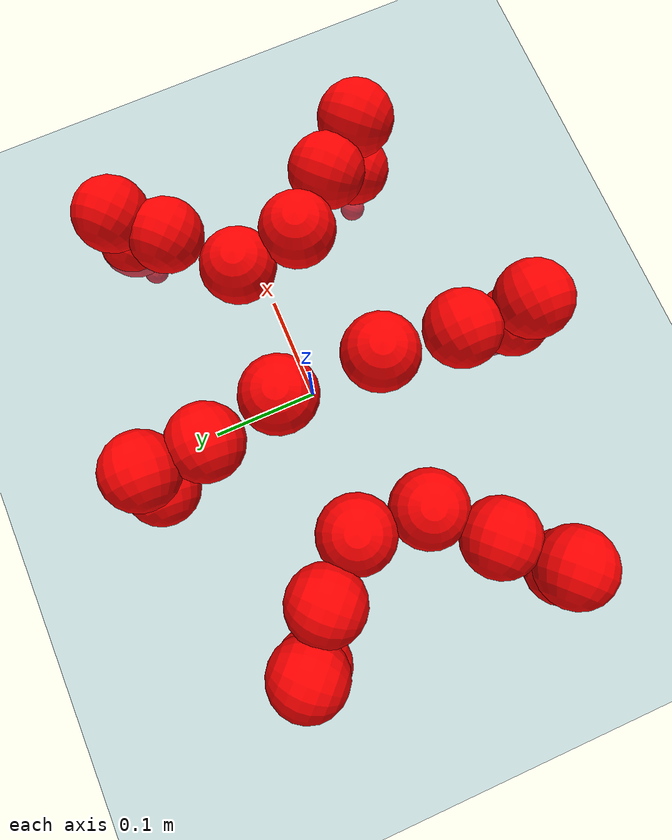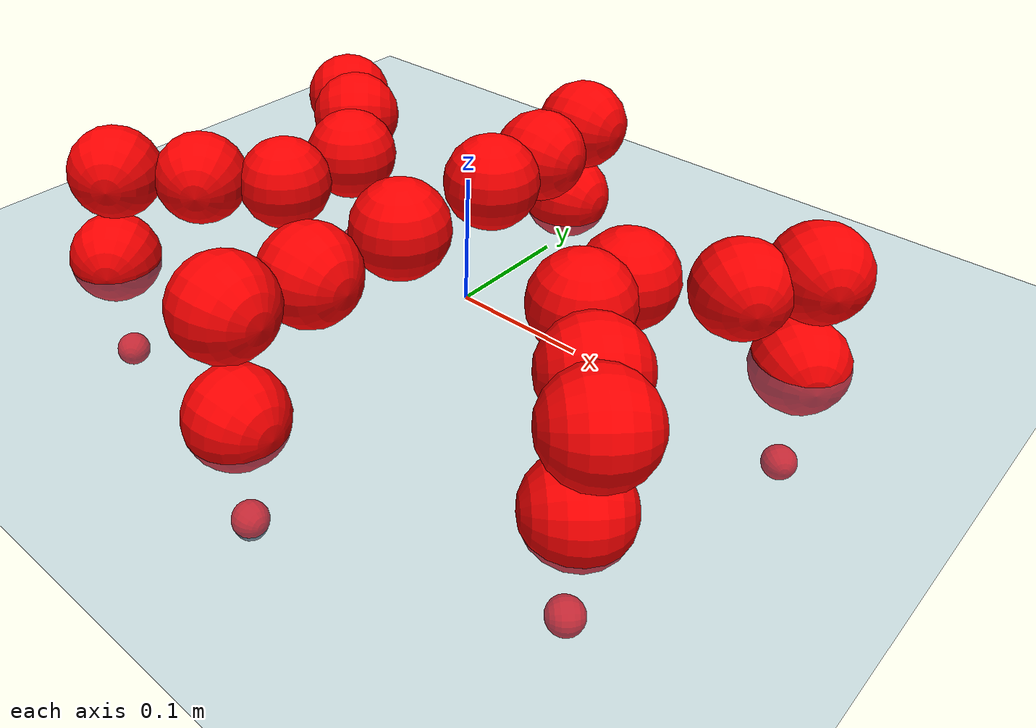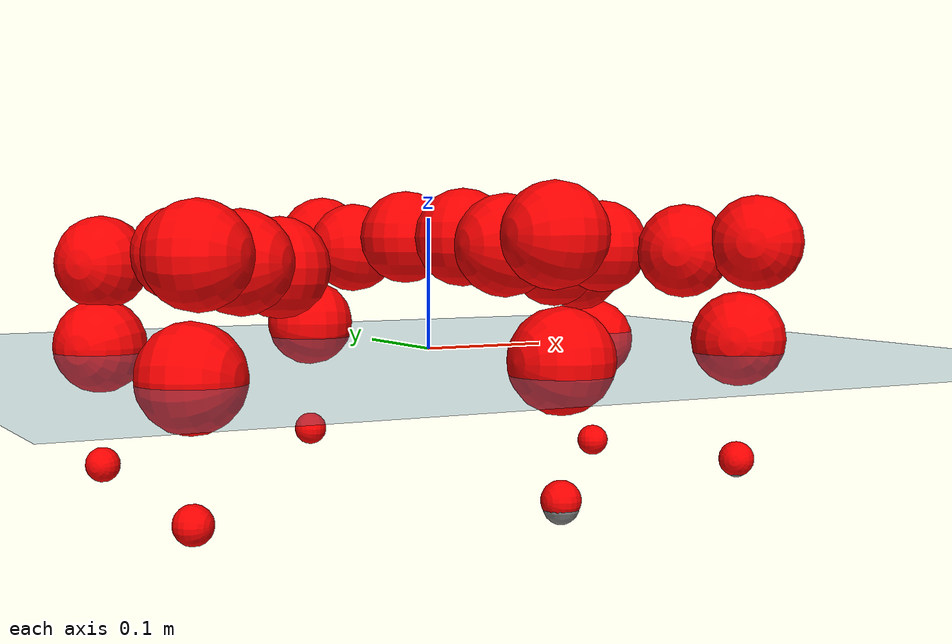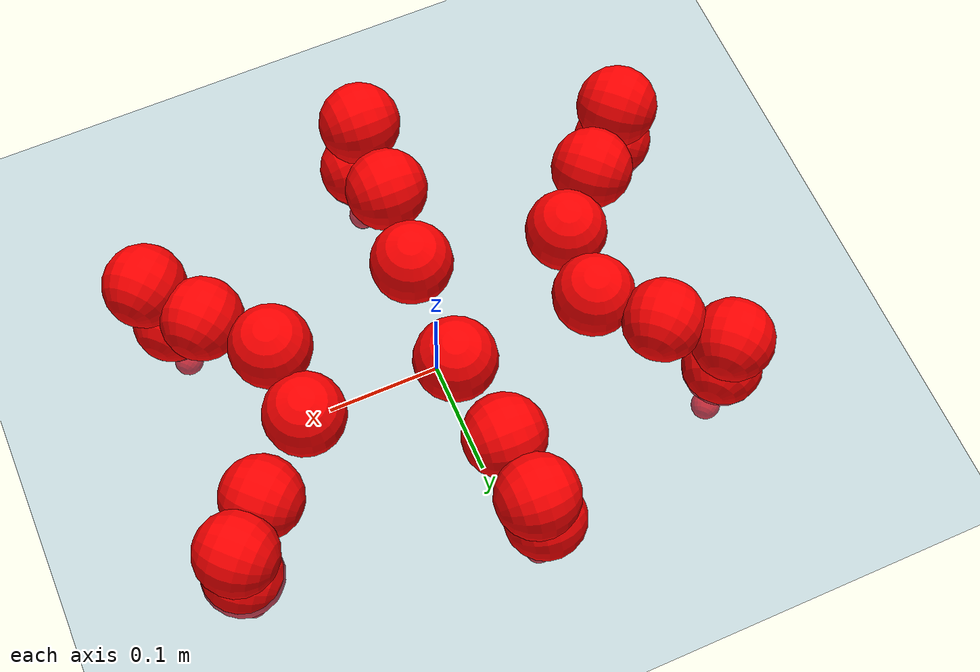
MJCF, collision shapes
<mujoco model="Golem">
  <compiler angle="radian" assetdir="assets" balanceinertia="true" inertiafromgeom="false"/>

  <option timestep="0.005" density="1.2" viscosity="2e-05"/>

  <size nkey="1"/>

  <visual>
    <quality shadowsize="8192"/>
    <map shadowclip="0.5"/>
  </visual>

  <default>
    <default class="/">
      <joint armature="0.01" damping="0.01" frictionloss="0.01"/>
      <geom contype="0" conaffinity="0" group="1" solref="-1000 -80"/>
      <site size="0.01 0.005 0.005" group="5"/>
      <general forcelimited="true" biastype="affine" gainprm="25" biasprm="0 -25 -0.5"/>
      <default class="visual">
        <geom type="mesh" group="2"/>
      </default>
      <default class="collision">
        <geom group="3"/>
      </default>
      <default class="foot">
        <geom size="0.01 0 0" condim="6" group="4" priority="1" solimp="0.015 1 0.01"/>
      </default>
      <default class="reward_collision_sphere">
        <geom group="5" rgba="1 0 0 1"/>
      </default>
    </default>
  </default>

  <asset>
    <texture type="skybox" colorspace="auto" name="//unnamed_texture_0" builtin="gradient" rgb1="0.95 0.95 0.95" rgb2="0.95 0.95 0.95" width="100" height="600"/>
    <texture type="2d" colorspace="auto" name="texplane" builtin="checker" rgb1="0.345 0.575 0.748" rgb2="0.345 0.575 0.748" markrgb="1 1 1" width="512" height="512"/>
    <material name="MatPlane" class="/" texture="texplane" texuniform="true" texrepeat="2 2" specular="0.9"/>
    <mesh name="body" class="/" file="body.stl" scale="0.001 0.001 0.001"/>
    <mesh name="coxa" class="/" file="coxa.stl" scale="0.001 0.001 0.001"/>
    <mesh name="femur" class="/" file="femur.stl" scale="0.001 0.001 0.001"/>
    <mesh name="tibia" class="/" file="tibia.stl" scale="0.001 0.001 0.001"/>
    <mesh name="tarsus" class="/" file="tarsus.stl" scale="0.001 0.001 0.001"/>
  </asset>

  <worldbody>
    <geom name="floor" class="/" size="100 100 0.125" type="plane" group="0" material="MatPlane"/>
    <light name="toplight_shadow" class="/" pos="0 0 5" dir="0.0990148 0.0990148 -0.990148" type="directional" ambient="0.04 0.04 0.04" diffuse="0.55 0.55 0.55" specular="0.12 0.12 0.12"/>
    <light name="toplight_fill" class="/" pos="0 0 5" dir="0.0990148 0.0990148 -0.990148" type="directional" castshadow="false" ambient="0.04 0.04 0.04" diffuse="0.3 0.3 0.3" specular="0.08 0.08 0.08"/>
    <body name="trunk" pos="-0.00487064 -0.011447 -0.00734249" quat="1 -6.33767e-05 -0.000414599 -0.000324216">
      <inertial pos="0.00579334 0.00150356 0.0129734" quat="1 0.000517363 0.000599382 -0.000470349" mass="2.01466" diaginertia="0.00422846 0.000428963 0.0351891"/>
      <joint name="//unnamed_joint_0" type="free"/>
      <geom name="//unnamed_geom_1" class="/" pos="0 0 0.0821236" quat="1 0 0 0" type="mesh" rgba="0.9 0.9 0.9 1" mesh="body"/>
      <site name="imu" class="/" pos="0.114517 0.0398655 0.131746" size="0.00893368"/>
      <camera name="track" class="/" pos="0 -1.09336 0" quat="0.707107 0.707107 0 0" mode="trackcom"/>
      <camera name="ego_camera" class="/" pos="0.110531 0 0.128318" quat="-0.5 -0.5 0.5 0.5"/>
      <body name="coxa_RR" pos="-0.155974 -0.0559648 0.0740268" quat="0.380794 -0.00494951 -0.000234211 -0.924647">
        <inertial pos="-0.000338389 0.0127677 -0.0123002" quat="0.999474 -0.00584108 -0.00335392 0.0317183" mass="0.123181" diaginertia="0.00430836 0.00050994 0.0348428"/>
        <joint name="coxa_joint_RR" class="/" pos="0 0 0" axis="-0.000939158 -0.000799955 -0.999999" range="-3.32483 3.15883" armature="0.00821747" damping="0.017462" frictionloss="0.00954341"/>
        <geom name="//unnamed_geom_2" class="/" type="mesh" rgba="0.2 0.2 0.2 1" mesh="coxa"/>
        <geom name="//unnamed_geom_3" class="reward_collision_sphere" size="0.0357347" pos="-0.0255073 0 0"/>
        <body name="femur_RR" pos="0.0379104 -0.000276595 0.00475735" quat="0.4983 -0.499445 0.497664 0.504561">
          <inertial pos="0.00938282 -0.00229509 0.00279786" quat="1 -0.000502928 -5.48836e-06 -0.000791734" mass="0.137302" diaginertia="0.00426517 0.000462571 0.0331259"/>
          <joint name="femur_joint_RR" class="/" pos="0 0 0" axis="6.72476e-05 0.00446502 -0.99999" range="-2.97747 2.99743" armature="0.0132208" damping="0.0236054" frictionloss="0.00867277"/>
          <geom name="//unnamed_geom_4" class="/" type="mesh" rgba="0.9 0.9 0.9 1" mesh="femur"/>
          <geom name="//unnamed_geom_5" class="reward_collision_sphere" size="0.0357347"/>
          <body name="tibia_RR" pos="-0.00603105 -0.0639735 -0.000282601" quat="-5.50101e-05 1 2.25681e-05 -4.24069e-05">
            <inertial pos="-0.00646041 0.00013698 -0.00265313" quat="0.999417 0.0293061 0.00667881 -0.0162178" mass="0.146325" diaginertia="0.00402344 0.000394505 0.0266348"/>
            <joint name="tibia_joint_RR" class="/" pos="0 0 0" axis="0.043413 -0.00888418 0.999018" stiffness="0.0276855" range="-3.01927 3.41904" armature="0.00989419" damping="0" frictionloss="0.00825582"/>
            <geom name="//unnamed_geom_6" class="/" type="mesh" rgba="0.2 0.2 0.2 1" mesh="tibia"/>
            <geom name="//unnamed_geom_7" class="reward_collision_sphere" size="0.0357347"/>
            <body name="tarsus_RR" pos="0.0755786 0.0114533 -0.000109158" quat="1 0.000179197 0.000165627 0.000262318">
              <inertial pos="0.0414863 -0.013908 0.0103483" quat="0.481667 0.522658 0.502716 0.492038" mass="0.123666" diaginertia="0.00413557 0.000363453 0.0300031"/>
              <joint name="tarsus_joint_RR" class="/" pos="0 0 0" axis="-0.0221512 0.0258558 0.99942" stiffness="0.00726127" range="-3.39119 3.16491" armature="0.00700788" damping="0.042142" frictionloss="0.00604005"/>
              <geom name="//unnamed_geom_8" class="/" type="mesh" rgba="0.9 0.9 0.9 1" mesh="tarsus"/>
              <geom name="foot_1" class="foot" size="0.0072032" pos="0.0952271 0 0" quat="0 -0.707107 0 0.707107"/>
              <geom name="//unnamed_geom_10" class="reward_collision_sphere" size="0.0357347"/>
              <geom name="//unnamed_geom_11" class="reward_collision_sphere" size="0.0134005" pos="0.091401 0 0"/>
              <site name="foot_1" class="foot" pos="0.0952271 0 0" quat="0 -0.707107 0 0.707107" size="0.00893368"/>
            </body>
          </body>
        </body>
      </body>
      <body name="coxa_RM" pos="0.000280007 -0.0781863 0.0940014" quat="0.706962 -0.000389237 7.7256e-06 -0.707252">
        <inertial pos="0.00122045 -0.00588678 -0.00377646" quat="0.999992 -0.00289406 0.00198059 0.00167633" mass="0.150736" diaginertia="0.0042554 0.000465303 0.0334875"/>
        <joint name="coxa_joint_RM" class="/" pos="0 0 0" axis="-0.0225126 -0.0138771 -0.99965" stiffness="0.0596238" range="-3.0897 3.20813" armature="0.00790854" damping="0.0311857" frictionloss="0.0149844"/>
        <geom name="//unnamed_geom_12" class="/" type="mesh" rgba="0.2 0.2 0.2 1" mesh="coxa"/>
        <geom name="//unnamed_geom_13" class="reward_collision_sphere" size="0.0357347" pos="-0.0255073 0 0"/>
        <body name="femur_RM" pos="0.0494991 -0.00777039 -0.00451186" quat="0.499978 -0.500197 0.499284 0.500541">
          <inertial pos="-0.00173722 0.00678946 -0.00937497" quat="0.999898 -0.00310557 -0.00274448 -0.0136649" mass="0.144015" diaginertia="0.00512492 0.000517675 0.0344241"/>
          <joint name="femur_joint_RM" class="/" pos="0 0 0" axis="0.00517224 -0.0131247 -0.9999" range="-3.1996 3.26912" armature="0.00929053" damping="0.0514042" frictionloss="0.00864462"/>
          <geom name="//unnamed_geom_14" class="/" type="mesh" rgba="0.9 0.9 0.9 1" mesh="femur"/>
          <geom name="//unnamed_geom_15" class="reward_collision_sphere" size="0.0357347"/>
          <body name="tibia_RM" pos="-0.00777296 -0.0659009 -0.00199237" quat="-0.000242141 1 -9.006e-05 0.000505795">
            <inertial pos="0.0127752 0.0117713 -0.004331" quat="0.997895 0.0272535 0.00253701 -0.0587927" mass="0.142439" diaginertia="0.00432994 0.000480822 0.03961"/>
            <joint name="tibia_joint_RM" class="/" pos="0 0 0" axis="-0.00365243 0.00238175 0.99999" range="-3.13283 3.01846" armature="0.0057464" damping="0" frictionloss="0.00573238"/>
            <geom name="//unnamed_geom_16" class="/" type="mesh" rgba="0.2 0.2 0.2 1" mesh="tibia"/>
            <geom name="//unnamed_geom_17" class="reward_collision_sphere" size="0.0357347"/>
            <body name="tarsus_RM" pos="0.0815437 0.00348079 -0.00311189" quat="0.999999 0.000173815 -0.000158296 0.00149802">
              <inertial pos="0.0513602 0.000192231 0.00212272" quat="0.500794 0.500983 0.500487 0.49773" mass="0.128883" diaginertia="0.00374191 0.000448789 0.0308096"/>
              <joint name="tarsus_joint_RM" class="/" pos="0 0 0" axis="-0.0086879 0.01174 0.999893" stiffness="0.0276702" range="-3.12801 3.1221" armature="0.0146491" damping="0" frictionloss="0.00857959"/>
              <geom name="//unnamed_geom_18" class="/" type="mesh" rgba="0.9 0.9 0.9 1" mesh="tarsus"/>
              <geom name="foot_2" class="foot" size="0.0121737" pos="0.0952271 0 0" quat="0 -0.707107 0 0.707107"/>
              <geom name="//unnamed_geom_20" class="reward_collision_sphere" size="0.0357347"/>
              <geom name="//unnamed_geom_21" class="reward_collision_sphere" size="0.0134005" pos="0.091401 0 0"/>
              <site name="foot_2" class="foot" pos="0.0952271 0 0" quat="0 -0.707107 0 0.707107" size="0.00893368"/>
            </body>
          </body>
        </body>
      </body>
      <body name="coxa_RF" pos="0.153937 -0.0491852 0.0855651" quat="0.923759 -0.000215004 0.000214839 -0.382973">
        <inertial pos="-0.0105682 0.000406909 -0.000775452" quat="0.999984 -0.00131205 -0.00247476 -0.0048995" mass="0.142809" diaginertia="0.0038225 0.000482304 0.0403404"/>
        <joint name="coxa_joint_RF" class="/" pos="0 0 0" axis="-0.00158235 0.00916904 -0.999957" stiffness="0.0199276" range="-2.98789 3.15721" armature="0.0119692" damping="0.0169121" frictionloss="0.00909718"/>
        <geom name="//unnamed_geom_22" class="/" type="mesh" rgba="0.2 0.2 0.2 1" mesh="coxa"/>
        <geom name="//unnamed_geom_23" class="reward_collision_sphere" size="0.0357347" pos="-0.0255073 0 0"/>
        <body name="femur_RF" pos="0.0384674 -0.00263645 -0.00305693" quat="0.499922 -0.499845 0.500136 0.500097">
          <inertial pos="-0.000725871 0.00186964 0.00972427" quat="0.999848 -0.00596668 -0.0156091 0.00500343" mass="0.159953" diaginertia="0.00481147 0.000410998 0.0342182"/>
          <joint name="femur_joint_RF" class="/" pos="0 0 0" axis="-0.000831115 -0.000185614 -1" stiffness="0.0398068" range="-3.35475 3.10573" armature="0.00537424" damping="0.0475047" frictionloss="0.00688174"/>
          <geom name="//unnamed_geom_24" class="/" type="mesh" rgba="0.9 0.9 0.9 1" mesh="femur"/>
          <geom name="//unnamed_geom_25" class="reward_collision_sphere" size="0.0357347"/>
          <body name="tibia_RF" pos="-0.00672365 -0.0555013 -0.00689359" quat="1.7608e-05 1 -2.23656e-05 -5.72929e-05">
            <inertial pos="-0.00450087 -0.00792975 0.00106347" quat="0.999843 0.00276396 0.00921258 -0.0149108" mass="0.147621" diaginertia="0.00375147 0.000541832 0.0311439"/>
            <joint name="tibia_joint_RF" class="/" pos="0 0 0" axis="-0.00101684 -0.00901593 0.999959" stiffness="0.00108675" range="-3.15108 3.18757" armature="0.00680334" damping="0.0180858" frictionloss="0.013343"/>
            <geom name="//unnamed_geom_26" class="/" type="mesh" rgba="0.2 0.2 0.2 1" mesh="tibia"/>
            <geom name="//unnamed_geom_27" class="reward_collision_sphere" size="0.0357347"/>
            <body name="tarsus_RF" pos="0.0726022 -0.011752 0.00432739" quat="0.999981 -0.00366222 -0.00475604 0.00106735">
              <inertial pos="0.053413 0.012516 0.00262564" quat="0.499271 0.543956 0.503771 0.448392" mass="0.159572" diaginertia="0.00377993 0.000568115 0.0351948"/>
              <joint name="tarsus_joint_RF" class="/" pos="0 0 0" axis="0.0172417 0.0427579 0.998937" stiffness="0.0495495" range="-3.38505 3.15264" armature="0.00312663" damping="0" frictionloss="0.0086686"/>
              <geom name="//unnamed_geom_28" class="/" type="mesh" rgba="0.9 0.9 0.9 1" mesh="tarsus"/>
              <geom name="foot_3" class="foot" size="0.0100516" pos="0.0952271 0 0" quat="0 -0.707107 0 0.707107"/>
              <geom name="//unnamed_geom_30" class="reward_collision_sphere" size="0.0357347"/>
              <geom name="//unnamed_geom_31" class="reward_collision_sphere" size="0.0134005" pos="0.091401 0 0"/>
              <site name="foot_3" class="foot" pos="0.0952271 0 0" quat="0 -0.707107 0 0.707107" size="0.00893368"/>
            </body>
          </body>
        </body>
      </body>
      <body name="coxa_LR" pos="-0.150886 0.0455839 0.0759946" quat="0.381678 0.00234686 0.000144529 0.924292">
        <inertial pos="0.00365679 0.012968 -0.00340486" quat="0.998806 0.0296198 0.0374491 -0.0103766" mass="0.163665" diaginertia="0.00505427 0.000480509 0.0407882"/>
        <joint name="coxa_joint_LR" class="/" pos="0 0 0" axis="-0.0206761 0.0214127 -0.999557" stiffness="0.0423711" range="-3.0243 2.89094" armature="0.0141357" damping="0" frictionloss="0.00959401"/>
        <geom name="//unnamed_geom_32" class="/" type="mesh" rgba="0.2 0.2 0.2 1" mesh="coxa"/>
        <geom name="//unnamed_geom_33" class="reward_collision_sphere" size="0.0357347" pos="-0.0255073 0 0"/>
        <body name="femur_LR" pos="0.036833 -0.00296709 0.00527002" quat="0.499166 -0.502797 0.501141 0.496876">
          <inertial pos="-0.00373576 0.00138552 -0.00232307" quat="0.998105 2.30066e-05 -0.0560296 0.0254401" mass="0.158603" diaginertia="0.00454106 0.000499891 0.0293606"/>
          <joint name="femur_joint_LR" class="/" pos="0 0 0" axis="-0.0276938 0.0151136 0.999502" stiffness="0.05089" range="-3.40871 3.33496" armature="0.00608128" damping="0.0368858" frictionloss="0.00930873"/>
          <geom name="//unnamed_geom_34" class="/" type="mesh" rgba="0.9 0.9 0.9 1" mesh="femur"/>
          <geom name="//unnamed_geom_35" class="reward_collision_sphere" size="0.0357347"/>
          <body name="tibia_LR" pos="0.00777819 -0.0593992 0.00796123" quat="0.000795038 0.999994 -0.00222938 -0.00233818">
            <inertial pos="0.000463021 0.0121852 -0.00803792" quat="0.999337 -0.0207775 0.0297242 -0.00320951" mass="0.143814" diaginertia="0.00403727 0.000458778 0.0357725"/>
            <joint name="tibia_joint_LR" class="/" pos="0 0 0" axis="-0.00279654 -0.000732214 -0.999996" stiffness="0.00657199" range="-2.94219 2.99948" armature="0.0117749" damping="0.077151" frictionloss="0.00553159"/>
            <geom name="//unnamed_geom_36" class="/" type="mesh" rgba="0.2 0.2 0.2 1" mesh="tibia"/>
            <geom name="//unnamed_geom_37" class="reward_collision_sphere" size="0.0357347"/>
            <body name="tarsus_LR" pos="0.0625485 -0.000235171 -0.0038513" quat="0.999986 0.000388801 -0.00490465 -0.00217653">
              <inertial pos="0.0480059 0.00142441 -0.000617895" quat="0.49698 0.532783 0.483432 0.485229" mass="0.133965" diaginertia="0.00396815 0.000443355 0.0308104"/>
              <joint name="tarsus_joint_LR" class="/" pos="0 0 0" axis="9.98284e-05 5.2751e-05 -1" stiffness="0.0525672" range="-2.92076 3.16387" armature="0.00913078" damping="0.0343257" frictionloss="0.0140096"/>
              <geom name="//unnamed_geom_38" class="/" type="mesh" rgba="0.9 0.9 0.9 1" mesh="tarsus"/>
              <geom name="foot_4" class="foot" size="0.00909389" pos="0.0952271 0 0" quat="0.707107 0 -0.707107 0"/>
              <geom name="//unnamed_geom_40" class="reward_collision_sphere" size="0.0357347"/>
              <geom name="//unnamed_geom_41" class="reward_collision_sphere" size="0.0134005" pos="0.091401 0 0"/>
              <site name="foot_4" class="foot" pos="0.0952271 0 0" quat="0.707107 0 -0.707107 0" size="0.00893368"/>
            </body>
          </body>
        </body>
      </body>
      <body name="coxa_LM" pos="0.00114835 0.067676 0.0928728" quat="0.709143 0.0011255 -0.00132791 0.705062">
        <inertial pos="0.0106292 0.00363404 0.00940342" quat="0.999975 0.00411576 0.0046755 -0.0033911" mass="0.140369" diaginertia="0.00499229 0.000561214 0.029521"/>
        <joint name="coxa_joint_LM" class="/" pos="0 0 0" axis="0.00186604 0.00691331 -0.999974" range="-3.13476 3.13564" armature="0.00388296" damping="0.0687158" frictionloss="0.0124656"/>
        <geom name="//unnamed_geom_42" class="/" type="mesh" rgba="0.2 0.2 0.2 1" mesh="coxa"/>
        <geom name="//unnamed_geom_43" class="reward_collision_sphere" size="0.0357347" pos="-0.0255073 0 0"/>
        <body name="femur_LM" pos="0.0477993 0.0118667 -0.00965414" quat="0.49987 -0.500047 0.500167 0.499916">
          <inertial pos="-0.00959892 -0.00626064 -0.0114363" quat="0.999982 -0.00107825 0.00452878 0.00379004" mass="0.143595" diaginertia="0.00413453 0.000481192 0.037036"/>
          <joint name="femur_joint_LM" class="/" pos="0 0 0" axis="-0.0191156 0.00595862 0.9998" range="-3.15747 3.32887" armature="0.00612423" damping="0.0217257" frictionloss="0.00525203"/>
          <geom name="//unnamed_geom_44" class="/" type="mesh" rgba="0.9 0.9 0.9 1" mesh="femur"/>
          <geom name="//unnamed_geom_45" class="reward_collision_sphere" size="0.0357347"/>
          <body name="tibia_LM" pos="-0.0053297 -0.0583887 0.00254562" quat="0.000156902 1 4.91328e-05 0.000118047">
            <inertial pos="0.007265 0.0127098 -0.0134931" quat="0.997685 0.0413353 -0.0425258 -0.0332882" mass="0.148997" diaginertia="0.00426686 0.000501702 0.0393772"/>
            <joint name="tibia_joint_LM" class="/" pos="0 0 0" axis="-0.0210786 0.0413919 -0.998921" stiffness="0.0658037" range="-3.15561 3.36722" armature="0.00673668" damping="0.000838116" frictionloss="0.00829762"/>
            <geom name="//unnamed_geom_46" class="/" type="mesh" rgba="0.2 0.2 0.2 1" mesh="tibia"/>
            <geom name="//unnamed_geom_47" class="reward_collision_sphere" size="0.0357347"/>
            <body name="tarsus_LM" pos="0.0702995 0.00112665 -0.0112386" quat="0.999998 0.000963827 0.00176247 -0.000917839">
              <inertial pos="0.0568758 0.00332899 0.0104068" quat="0.477273 0.459134 0.530661 0.528966" mass="0.13272" diaginertia="0.00479022 0.000585952 0.0410791"/>
              <joint name="tarsus_joint_LM" class="/" pos="0 0 0" axis="0.0501757 0.0205456 -0.998529" stiffness="0.036468" range="-3.15225 3.36131" armature="0.011571" damping="0" frictionloss="0.00897346"/>
              <geom name="//unnamed_geom_48" class="/" type="mesh" rgba="0.9 0.9 0.9 1" mesh="tarsus"/>
              <geom name="foot_5" class="foot" size="0.00884862" pos="0.0952271 0 0" quat="0.707107 0 -0.707107 0"/>
              <geom name="//unnamed_geom_50" class="reward_collision_sphere" size="0.0357347"/>
              <geom name="//unnamed_geom_51" class="reward_collision_sphere" size="0.0134005" pos="0.091401 0 0"/>
              <site name="foot_5" class="foot" pos="0.0952271 0 0" quat="0.707107 0 -0.707107 0" size="0.00893368"/>
            </body>
          </body>
        </body>
      </body>
      <body name="coxa_LF" pos="0.148681 0.0483865 0.0718933" quat="0.923864 -0.00226186 -0.00545924 0.382675">
        <inertial pos="-0.00330192 0.00273792 -0.00469917" quat="0.9977 0.0268717 0.0274422 0.0558523" mass="0.118007" diaginertia="0.00467811 0.000407439 0.0397237"/>
        <joint name="coxa_joint_LF" class="/" pos="0 0 0" axis="-0.00431131 -0.0190218 -0.99981" stiffness="0.0392922" range="-3.12979 3.13564" armature="0.0095269" damping="0.0390661" frictionloss="0.00810755"/>
        <geom name="//unnamed_geom_52" class="/" type="mesh" rgba="0.2 0.2 0.2 1" mesh="coxa"/>
        <geom name="//unnamed_geom_53" class="reward_collision_sphere" size="0.0357347" pos="-0.0255073 0 0"/>
        <body name="femur_LF" pos="0.050635 -0.00459441 -0.00812198" quat="0.499793 -0.499003 0.500674 0.500528">
          <inertial pos="-0.0110122 0.00391458 -0.012383" quat="0.999767 0.00199572 -0.000166448 -0.0214832" mass="0.166898" diaginertia="0.00500672 0.00048185 0.037632"/>
          <joint name="femur_joint_LF" class="/" pos="0 0 0" axis="0.0335746 0.0168442 0.999294" stiffness="9.19856e-05" range="-3.16828 2.8637" armature="0.00469586" damping="0.0417722" frictionloss="0.00914841"/>
          <geom name="//unnamed_geom_54" class="/" type="mesh" rgba="0.9 0.9 0.9 1" mesh="femur"/>
          <geom name="//unnamed_geom_55" class="reward_collision_sphere" size="0.0357347"/>
          <body name="tibia_LF" pos="-0.00930956 -0.051969 0.00279452" quat="0.000692837 0.999992 -0.00384792 -0.00111189">
            <inertial pos="0.0023939 -0.00280538 0.00089738" quat="0.999983 0.00307417 -0.00309241 0.00392824" mass="0.143878" diaginertia="0.00440768 0.000492864 0.0352647"/>
            <joint name="tibia_joint_LF" class="/" pos="0 0 0" axis="0.0165022 0.0466592 -0.998775" range="-3.04325 2.97006" armature="0.0141881" damping="0.0070948" frictionloss="0.0072472"/>
            <geom name="//unnamed_geom_56" class="/" type="mesh" rgba="0.2 0.2 0.2 1" mesh="tibia"/>
            <geom name="//unnamed_geom_57" class="reward_collision_sphere" size="0.0357347"/>
            <body name="tarsus_LF" pos="0.0748029 -0.00165522 0.00320066" quat="0.999997 0.000389081 -0.00123214 0.00205046">
              <inertial pos="0.0610551 -0.00436597 0.00145506" quat="0.501362 0.495346 0.504613 0.498633" mass="0.164342" diaginertia="0.00491069 0.000544442 0.0352465"/>
              <joint name="tarsus_joint_LF" class="/" pos="0 0 0" axis="0.0207764 -0.0211209 -0.999561" stiffness="0.0227875" range="-2.90369 2.89428" armature="0.00872051" damping="0.0374671" frictionloss="0.00880699"/>
              <geom name="//unnamed_geom_58" class="/" type="mesh" rgba="0.9 0.9 0.9 1" mesh="tarsus"/>
              <geom name="foot_6" class="foot" size="0.00845335" pos="0.0952271 0 0" quat="0.707107 0 -0.707107 0"/>
              <geom name="//unnamed_geom_60" class="reward_collision_sphere" size="0.0357347"/>
              <geom name="//unnamed_geom_61" class="reward_collision_sphere" size="0.0134005" pos="0.091401 0 0"/>
              <site name="foot_6" class="foot" pos="0.0952271 0 0" quat="0.707107 0 -0.707107 0" size="0.00893368"/>
            </body>
          </body>
        </body>
      </body>
    </body>
  </worldbody>

  <contact>
    <pair class="/" geom1="floor" geom2="foot_1" name="//unnamed_contact_0"/>
    <pair class="/" geom1="floor" geom2="foot_2" name="//unnamed_contact_1"/>
    <pair class="/" geom1="floor" geom2="foot_3" name="//unnamed_contact_2"/>
    <pair class="/" geom1="floor" geom2="foot_4" name="//unnamed_contact_3"/>
    <pair class="/" geom1="floor" geom2="foot_5" name="//unnamed_contact_4"/>
    <pair class="/" geom1="floor" geom2="foot_6" name="//unnamed_contact_5"/>
  </contact>

  <actuator>
    <general name="coxa_joint_RR" class="/" joint="coxa_joint_RR" forcerange="-5.23977 5.23977" gainprm="21.7809" biasprm="0 -21.7809 -0.422533"/>
    <general name="femur_joint_RR" class="/" joint="femur_joint_RR" forcerange="-8.06577 8.06577" gainprm="21.7809" biasprm="0 -21.7809 -0.422533"/>
    <general name="tibia_joint_RR" class="/" joint="tibia_joint_RR" forcerange="-9.62776 9.62776" gainprm="21.7809" biasprm="0 -21.7809 -0.422533"/>
    <general name="tarsus_joint_RR" class="/" joint="tarsus_joint_RR" forcerange="-8.44606 8.44606" gainprm="21.7809" biasprm="0 -21.7809 -0.422533"/>
    <general name="coxa_joint_RM" class="/" joint="coxa_joint_RM" forcerange="-6.63897 6.63897" gainprm="21.7809" biasprm="0 -21.7809 -0.422533"/>
    <general name="femur_joint_RM" class="/" joint="femur_joint_RM" forcerange="-6.6433 6.6433" gainprm="21.7809" biasprm="0 -21.7809 -0.422533"/>
    <general name="tibia_joint_RM" class="/" joint="tibia_joint_RM" forcerange="-9.84641 9.84641" gainprm="21.7809" biasprm="0 -21.7809 -0.422533"/>
    <general name="tarsus_joint_RM" class="/" joint="tarsus_joint_RM" forcerange="-7.40217 7.40217" gainprm="21.7809" biasprm="0 -21.7809 -0.422533"/>
    <general name="coxa_joint_RF" class="/" joint="coxa_joint_RF" forcerange="-6.43694 6.43694" gainprm="21.7809" biasprm="0 -21.7809 -0.422533"/>
    <general name="femur_joint_RF" class="/" joint="femur_joint_RF" forcerange="-3.19378 3.19378" gainprm="21.7809" biasprm="0 -21.7809 -0.422533"/>
    <general name="tibia_joint_RF" class="/" joint="tibia_joint_RF" forcerange="-4.98196 4.98196" gainprm="21.7809" biasprm="0 -21.7809 -0.422533"/>
    <general name="tarsus_joint_RF" class="/" joint="tarsus_joint_RF" forcerange="-3.21682 3.21682" gainprm="21.7809" biasprm="0 -21.7809 -0.422533"/>
    <general name="coxa_joint_LR" class="/" joint="coxa_joint_LR" forcerange="-9.05286 9.05286" gainprm="21.7809" biasprm="0 -21.7809 -0.422533"/>
    <general name="femur_joint_LR" class="/" joint="femur_joint_LR" forcerange="-5.37921 5.37921" gainprm="21.7809" biasprm="0 -21.7809 -0.422533"/>
    <general name="tibia_joint_LR" class="/" joint="tibia_joint_LR" forcerange="-4.74813 4.74813" gainprm="21.7809" biasprm="0 -21.7809 -0.422533"/>
    <general name="tarsus_joint_LR" class="/" joint="tarsus_joint_LR" forcerange="-6.1756 6.1756" gainprm="21.7809" biasprm="0 -21.7809 -0.422533"/>
    <general name="coxa_joint_LM" class="/" joint="coxa_joint_LM" forcerange="-5.05816 5.05816" gainprm="21.7809" biasprm="0 -21.7809 -0.422533"/>
    <general name="femur_joint_LM" class="/" joint="femur_joint_LM" forcerange="-6.30589 6.30589" gainprm="21.7809" biasprm="0 -21.7809 -0.422533"/>
    <general name="tibia_joint_LM" class="/" joint="tibia_joint_LM" forcerange="-9.46881 9.46881" gainprm="21.7809" biasprm="0 -21.7809 -0.422533"/>
    <general name="tarsus_joint_LM" class="/" joint="tarsus_joint_LM" forcerange="-8.63348 8.63348" gainprm="21.7809" biasprm="0 -21.7809 -0.422533"/>
    <general name="coxa_joint_LF" class="/" joint="coxa_joint_LF" forcerange="-5.46201 5.46201" gainprm="21.7809" biasprm="0 -21.7809 -0.422533"/>
    <general name="femur_joint_LF" class="/" joint="femur_joint_LF" forcerange="-9.14154 9.14154" gainprm="21.7809" biasprm="0 -21.7809 -0.422533"/>
    <general name="tibia_joint_LF" class="/" joint="tibia_joint_LF" forcerange="-6.79983 6.79983" gainprm="21.7809" biasprm="0 -21.7809 -0.422533"/>
    <general name="tarsus_joint_LF" class="/" joint="tarsus_joint_LF" forcerange="-6.59294 6.59294" gainprm="21.7809" biasprm="0 -21.7809 -0.422533"/>
  </actuator>

  <sensor>
    <gyro site="imu" name="imu_angular_velocity"/>
    <velocimeter site="imu" name="imu_linear_velocity"/>
    <framelinvel objtype="site" objname="foot_1" name="foot_1_global_linear_velocity"/>
    <framelinvel objtype="site" objname="foot_2" name="foot_2_global_linear_velocity"/>
    <framelinvel objtype="site" objname="foot_3" name="foot_3_global_linear_velocity"/>
    <framelinvel objtype="site" objname="foot_4" name="foot_4_global_linear_velocity"/>
    <framelinvel objtype="site" objname="foot_5" name="foot_5_global_linear_velocity"/>
    <framelinvel objtype="site" objname="foot_6" name="foot_6_global_linear_velocity"/>
  </sensor>

  <keyframe>
    <key name="home" qpos="0 0 0.1457 1 0 0 0 0 0 0 0 0 0 0 0 0 0 0 0 0 0 0 0 0 0 0 0 0 0 0 0"/>
  </keyframe>
</mujoco>
